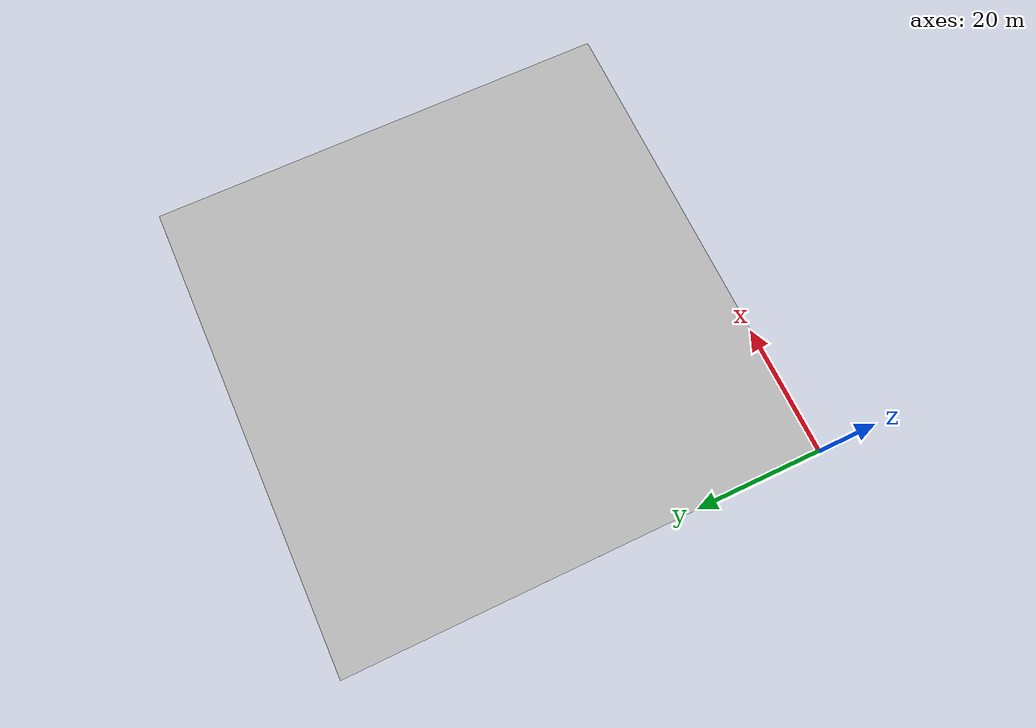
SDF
<?xml version="1.0" ?>
<sdf version="1.5">
  <model name="soil">
    <static>true</static>
    <link name="link">
      <collision name="collision">
        <geometry>
          <mesh>
            <uri>model://soil/meshes/soil.STL</uri>
            <scale>0.05 0.05 0.00122749999</scale>
          </mesh>
        </geometry>
        <surface>
          <friction>
            <ode>
              <mu>100</mu>
              <mu2>50</mu2>
            </ode>
          </friction>
        </surface>
      </collision>
      <visual name="visual">
        <geometry>
          <mesh>
            <uri>model://soil/meshes/soil.STL</uri>
            <scale>0.05 0.05 0.00122749999</scale>
          </mesh>
        </geometry>
        <material>
          <script>
            <uri>model://soil/materials/scripts</uri>
            <uri>model://soil/materials/textures</uri>
            <name>soil/Image</name>
          </script>
        </material>
      </visual>
    </link>
  </model>
</sdf>
